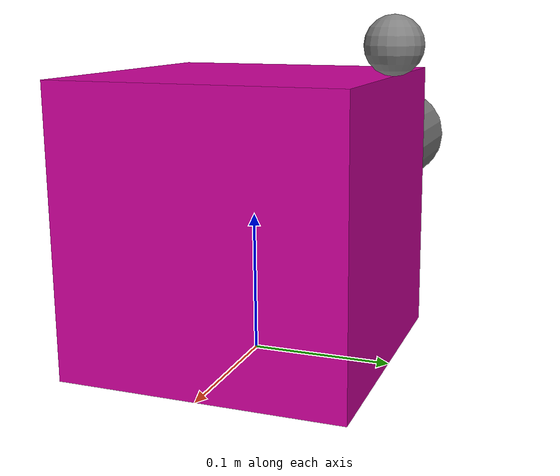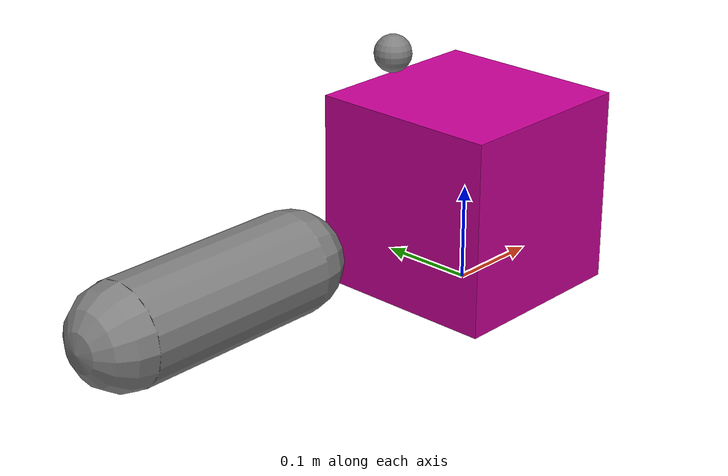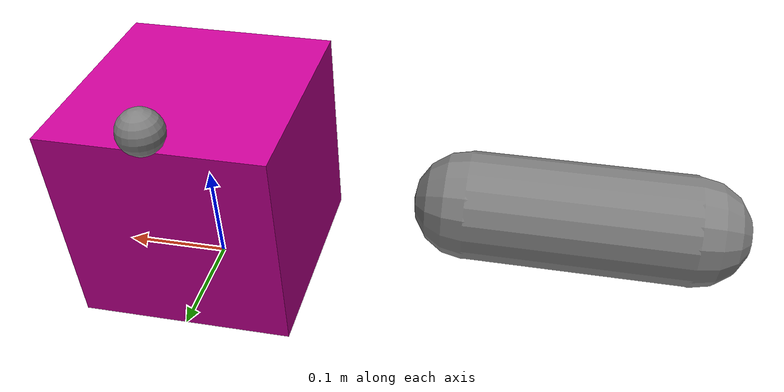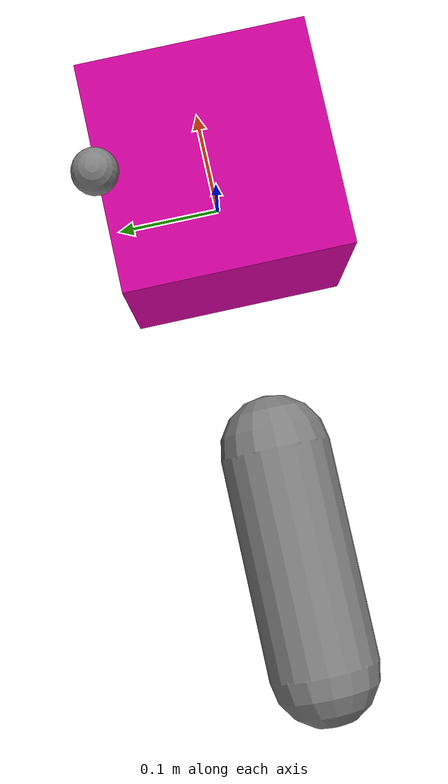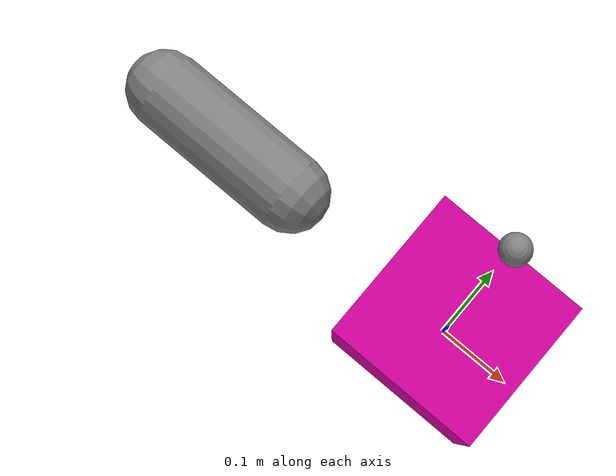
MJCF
<mujoco>

   <option integrator="RK4" timestep="0.001" >
   </option>
   <visual>
      <headlight ambient=".4 .4 .4" diffuse=".8 .8 .8" specular="0.1 0.1 0.1"/>
   </visual>
   <asset>
      <texture name="skybox" type="skybox" builtin="gradient" rgb1=".5 .7 .8" rgb2="0 0 0"
               width="800" height="800" mark="random" random="0.005" markrgb="1 .8 .8"/>
      <texture name="table" type="2d" builtin="flat" rgb1=".8 .8 .8"
               width="800" height="800"/>
      <material name="table" texture="table" specular="1.0" reflectance="0.2"/>
  </asset>
   <worldbody>
      <light diffuse=".5 .5 .5" pos="0 0 3" dir="0 0 -1"/>
      <body name="box" pos="0 0 0.1">
         <freejoint name="box"/>
         <geom name="box" type="box" size=".1 .1 .1" rgba=".8 0 .6 1" friction = "1.0 0.005 0001" mass="15"/>
         <body name="com_offset" pos="0.0 0.1 0.12">
            <geom name="offset_mass" type="sphere" size="0.02" mass="10"/>
         </body>
      </body>
      <body name="pusher" pos="-0.5 0.0 0.1">
         <joint name="pusher_x" type="slide" axis="1 0 0" damping="1.0"/>
         <joint name="pusher_y" type="slide" axis="0 1 0" damping="40.0"/>
         <geom name="pusher" type="capsule" size="0.05 0.1" pos="0.15 0 0" euler="0.0 -90.0 0" friction="1.0 0.005 0001"/>
      </body>
   </worldbody>
   <actuator>
      <velocity ctrllimited="true" ctrlrange="0 2" joint="pusher_x" kv="1000.0"/>
      <position ctrllimited="true" ctrlrange="-0.2 0.2" joint="pusher_y" kp="500.0"/>
    </actuator>
</mujoco>
